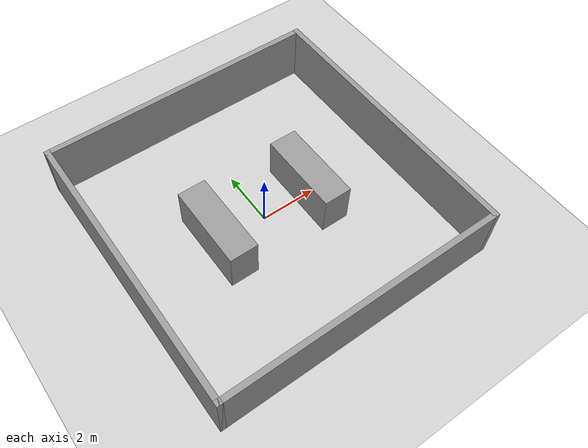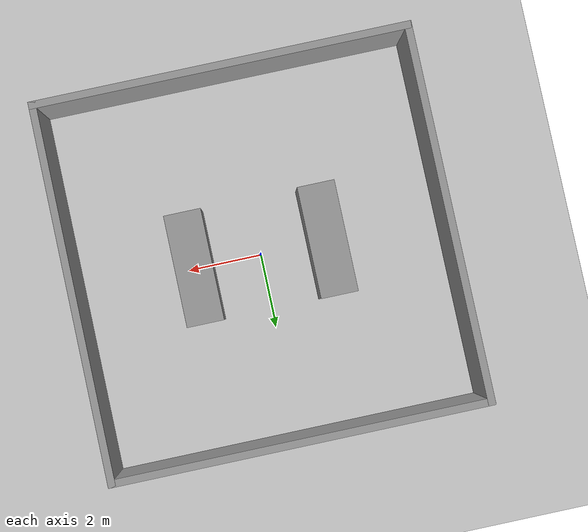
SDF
<?xml version="1.0" ?>
<sdf version="1.5">
  <world name="default">
    <!-- A global light source -->
    <include>
      <uri>model://sun</uri>
    </include>
    <!-- A ground plane -->
    <include>
      <uri>model://ground_plane</uri>
    </include>
    <model name='BuildingDefaultName'>
    <link name='Wall_0'>
      <collision name='Wall_0_Collision'>
        <geometry>
          <box>
            <size>10.2 0.2 2</size>
          </box>
        </geometry>
        <pose>0 0 1 0 -0 0</pose>
      </collision>
      <visual name='Wall_0_Visual'>
        <pose>0 0 1 0 -0 0</pose>
        <geometry>
          <box>
            <size>10.2 0.2 2</size>
          </box>
        </geometry>
        <material>
          <script>
            <uri>file://media/materials/scripts/gazebo.material</uri>
            <name>Gazebo/Grey</name>
          </script>
        </material>
      </visual>
      <velocity_decay>
        <linear>0</linear>
        <angular>0</angular>
      </velocity_decay>
      <pose>-5 0 0 0 0 -1.5708</pose>
    </link>
    <link name='Wall_10'>
      <collision name='Wall_10_Collision'>
        <geometry>
          <box>
            <size>3 1 1.5</size>
          </box>
        </geometry>
        <pose>0 0 0.75 0 -0 0</pose>
      </collision>
      <visual name='Wall_10_Visual'>
        <pose>0 0 0.75 0 -0 0</pose>
        <geometry>
          <box>
            <size>3 1 1.5</size>
          </box>
        </geometry>
        <material>
          <script>
            <uri>file://media/materials/scripts/gazebo.material</uri>
            <name>Gazebo/Grey</name>
          </script>
        </material>
      </visual>
      <velocity_decay>
        <linear>0</linear>
        <angular>0</angular>
      </velocity_decay>
      <pose>1.8 0 0 0 0 -1.5708</pose>
    </link>
    <link name='Wall_2'>
      <collision name='Wall_2_Collision'>
        <geometry>
          <box>
            <size>10.2 0.2 2</size>
          </box>
        </geometry>
        <pose>0 0 1 0 -0 0</pose>
      </collision>
      <visual name='Wall_2_Visual'>
        <pose>0 0 1 0 -0 0</pose>
        <geometry>
          <box>
            <size>10.2 0.2 2</size>
          </box>
        </geometry>
        <material>
          <script>
            <uri>file://media/materials/scripts/gazebo.material</uri>
            <name>Gazebo/Grey</name>
          </script>
        </material>
      </visual>
      <velocity_decay>
        <linear>0</linear>
        <angular>0</angular>
      </velocity_decay>
      <pose>5 0 0 0 -0 1.5708</pose>
    </link>
    <link name='Wall_4'>
      <collision name='Wall_4_Collision'>
        <geometry>
          <box>
            <size>10.2 0.2 2</size>
          </box>
        </geometry>
        <pose>0 0 1 0 -0 0</pose>
      </collision>
      <visual name='Wall_4_Visual'>
        <pose>0 0 1 0 -0 0</pose>
        <geometry>
          <box>
            <size>10.2 0.2 2</size>
          </box>
        </geometry>
        <material>
          <script>
            <uri>file://media/materials/scripts/gazebo.material</uri>
            <name>Gazebo/Grey</name>
          </script>
        </material>
      </visual>
      <velocity_decay>
        <linear>0</linear>
        <angular>0</angular>
      </velocity_decay>
      <pose>0 5 0 0 -0 0</pose>
    </link>
    <link name='Wall_6'>
      <collision name='Wall_6_Collision'>
        <geometry>
          <box>
            <size>10.2 0.2 2</size>
          </box>
        </geometry>
        <pose>0 0 1 0 -0 0</pose>
      </collision>
      <visual name='Wall_6_Visual'>
        <pose>0 0 1 0 -0 0</pose>
        <geometry>
          <box>
            <size>10.2 0.2 2</size>
          </box>
        </geometry>
        <material>
          <script>
            <uri>file://media/materials/scripts/gazebo.material</uri>
            <name>Gazebo/Grey</name>
          </script>
        </material>
      </visual>
      <velocity_decay>
        <linear>0</linear>
        <angular>0</angular>
      </velocity_decay>
      <pose>0 -5 0 0 -0 0</pose>
    </link>
    <link name='Wall_8'>
      <collision name='Wall_8_Collision'>
        <geometry>
          <box>
            <size>3 1 1.5</size>
          </box>
        </geometry>
        <pose>0 0 0.75 0 -0 0</pose>
      </collision>
      <visual name='Wall_8_Visual'>
        <pose>0 0 0.75 0 -0 0</pose>
        <geometry>
          <box>
            <size>3 1 1.5</size>
          </box>
        </geometry>
        <material>
          <script>
            <uri>file://media/materials/scripts/gazebo.material</uri>
            <name>Gazebo/Grey</name>
          </script>
        </material>
      </visual>
      <velocity_decay>
        <linear>0</linear>
        <angular>0</angular>
      </velocity_decay>
      <pose>-1.8 0 0 0 -0 1.5708</pose>
    </link>
    <static>1</static>
  </model>
  </world>
</sdf>
